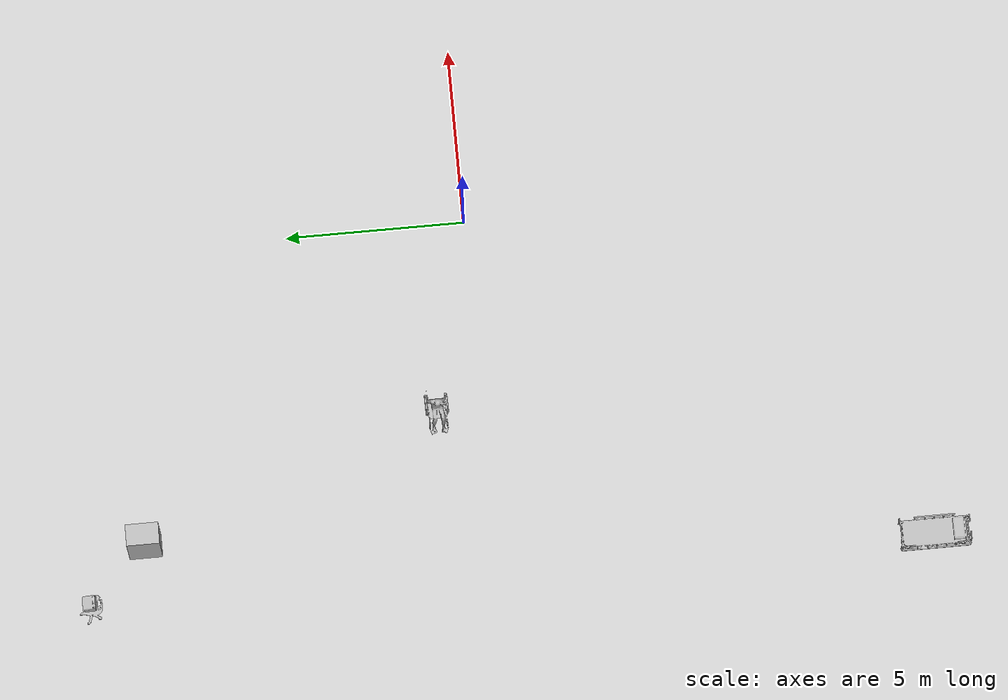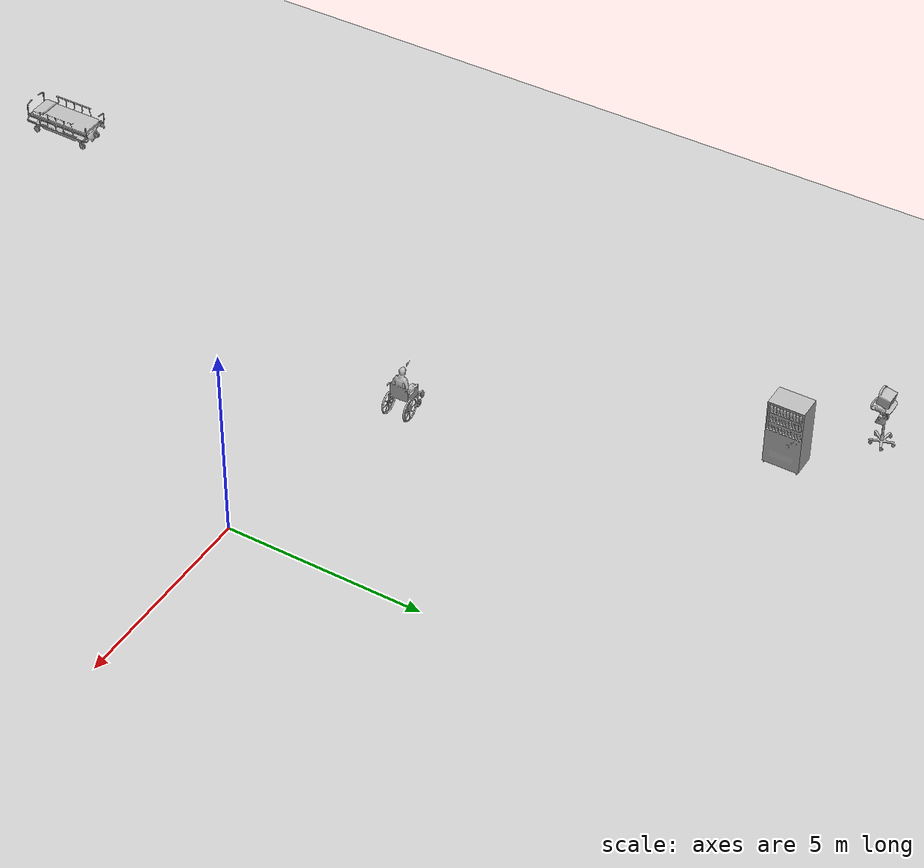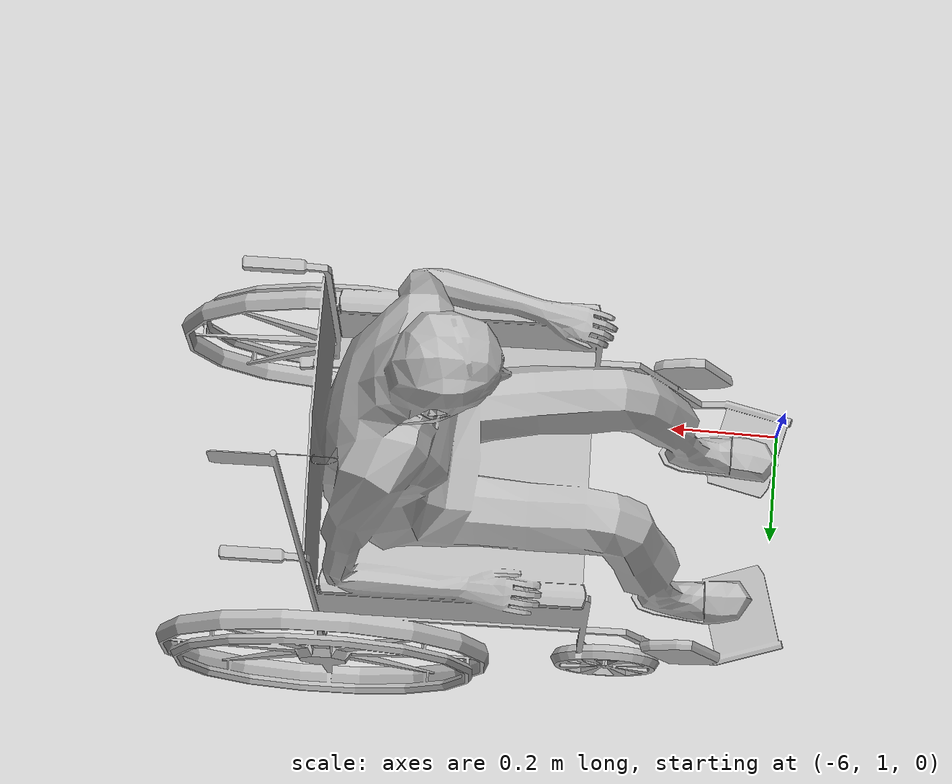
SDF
<sdf version="1.9">
 <world name="hospital_world">
  <plugin filename="gz-sim-imu-system" name="gz::sim::systems::Imu"/>
  <plugin filename="gz-sim-physics-system" name="gz::sim::systems::Physics"/>
  <plugin filename="gz-sim-user-commands-system" name="gz::sim::systems::UserCommands"/>
  <plugin filename="gz-sim-scene-broadcaster-system" name="gz::sim::systems::SceneBroadcaster"/>
  <plugin filename="gz-sim-sensors-system" name="gz::sim::systems::Sensors">
   <render_engine>ogre2</render_engine>
  </plugin>
  <gravity>0 0 -9.8</gravity>
  <scene><ambient>0.6 0.6 0.6 1</ambient><background>0.4 0.4 0.4 1</background><shadows>false</shadows></scene>
  <include><uri>https://fuel.gazebosim.org/1.0/openrobotics/models/Sun</uri></include>
  <include>
   <uri>https://fuel.gazebosim.org/1.0/openrobotics/models/Ground Plane</uri>
   <pose>0 0 -0.1 0 0 0</pose>
  </include>
  <model name="PatientWheelChair_1">
   <static>true</static>
   <pose>-5.46091 1.23577 0 0 0 -1.54828</pose>
   <include><uri>model://PatientWheelChair</uri></include>
  </model>
  <model name="TrolleyBed_1">
   <static>true</static>
   <pose>-10.1378 -12.1648 0 0 0 1.57</pose>
   <include><uri>model://TrolleyBed</uri></include>
  </model>
  <model name="VendingMachine_1">
   <static>true</static>
   <pose>-8.45694 9.63064 0 0 0 0</pose>
   <include><uri>model://VendingMachine</uri></include>
  </model>
  <model name="BPCart_1">
   <static>true</static>
   <pose>-10.1788 11.173 0.003446 1e-06 0 0.003096</pose>
   <include><uri>model://BPCart</uri></include>
  </model>
 </world>
</sdf>

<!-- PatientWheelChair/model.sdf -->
<sdf version="1.6">
  <model name="PatientWheelChair">
   <static>true</static>
    <link name="body">
      <pose>0 0 0 0 0 0</pose>

      <visual name="visual">
        <geometry>
          <mesh>
            <uri>model://PatientWheelChair/meshes/PatientWheelChair.obj</uri>
          </mesh>
        </geometry>
      </visual>

      <collision name="collision">
        <geometry>
          <mesh>
            <uri>model://PatientWheelChair/meshes/PatientWheelChair_Col.obj</uri>
          </mesh>
        </geometry>
      </collision>

    </link>
  </model>
</sdf>

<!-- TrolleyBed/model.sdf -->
<sdf version="1.5">
  <model name="TrolleyBed">
    <link name="link">
      <pose>0 0 0 0 0 0</pose>

        <visual name="visual">
          <geometry>
            <mesh><uri>model://TrolleyBed/meshes/TrolleyBed.obj</uri></mesh>
          </geometry>
        </visual>

        <collision name="collision">
          <geometry>
            <mesh><uri>model://TrolleyBed/meshes/TrolleyBed.obj</uri></mesh>
          </geometry>
        </collision>

    </link>
  </model>
</sdf>

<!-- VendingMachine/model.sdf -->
<sdf version="1.6">
  <model name='VendingMachine'>
    <link name="body">
      <pose>0 0 0 0 0 0</pose>

      <visual name="visual">
        <geometry>
          <mesh>
            <uri>model://VendingMachine/meshes/VendingMachine.obj</uri>
          </mesh>
        </geometry>
      </visual>

      <collision name="collision">
        <geometry>
          <mesh>
            <uri>model://VendingMachine/meshes/VendingMachine.obj</uri>
          </mesh>
        </geometry>
      </collision>

    </link>
  </model>
</sdf>

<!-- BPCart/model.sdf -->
<sdf version="1.6">
  <model name='BPCart'>
    <link name="body">
      <pose>0 0 0 0 0 0</pose>

      <visual name="visual">
        <geometry>
          <mesh>
            <uri>model://BPCart/meshes/Cart_BP.obj</uri>
          </mesh>
        </geometry>
      </visual>

      <collision name="collision">
        <geometry>
          <mesh>
            <uri>model://BPCart/meshes/Cart_BP_Col.obj</uri>
          </mesh>
        </geometry>
      </collision>

    </link>
  </model>
</sdf>
